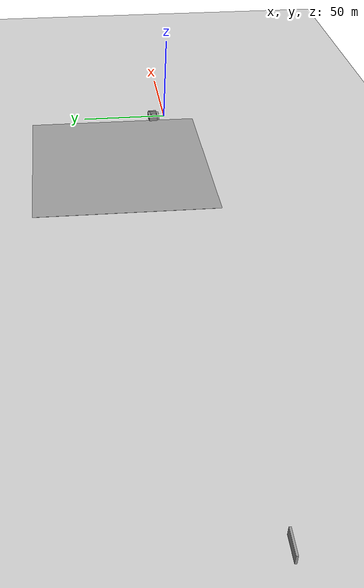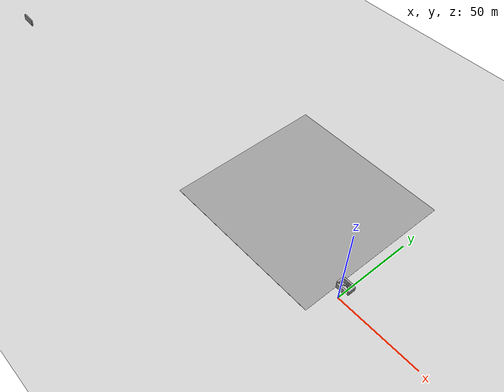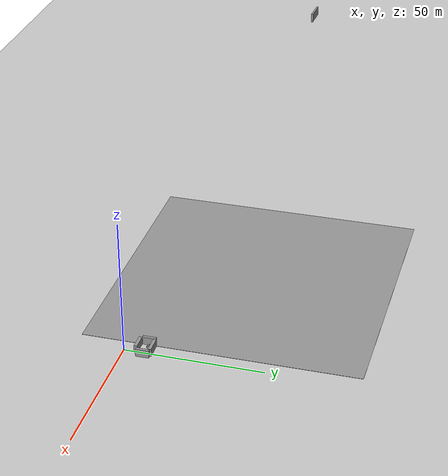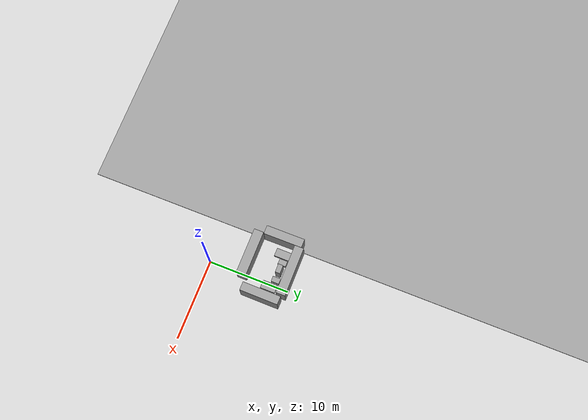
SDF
<sdf version="1.6">
 <world name="default">
  <light name="sun" type="directional">
   <pose>0 0 10 0 -0 0</pose>
   <diffuse>0.8 0.8 0.8 1</diffuse>
   <specular>0.2 0.2 0.2 1</specular>
   <attenuation>
    <range>1000</range>
    <constant>0.9</constant>
    <linear>0.01</linear>
    <quadratic>0.001</quadratic>
   </attenuation>
   <direction>-0.5 0.1 -0.9</direction>
  </light>
  <model name="ground_plane">
   <static>1</static>
   <link name="link">
    <collision name="collision">
     <geometry><plane><normal>0 0 1</normal><size>100 100</size></plane></geometry>
     <surface><friction><ode><mu>100</mu><mu2>50</mu2></ode></friction></surface>
    </collision>
    <visual name="visual">
     <cast_shadows>0</cast_shadows>
     <geometry><plane><normal>0 0 1</normal><size>100 100</size></plane></geometry>
     <material>
      <script><uri>file://media/materials/scripts/gazebo.material</uri><name>Gazebo/Grey</name></script>
     </material>
    </visual>
   </link>
  </model>
  <gravity>0 0 -9.8</gravity>
  <magnetic_field>6e-06 2.3e-05 -4.2e-05</magnetic_field>
  <atmosphere type="adiabatic"/>
  <physics name="default_physics" default="0" type="ode">
   <max_step_size>0.001</max_step_size>
   <real_time_factor>1</real_time_factor>
   <real_time_update_rate>1000</real_time_update_rate>
  </physics>
  <scene><ambient>0.4 0.4 0.4 1</ambient><background>0.7 0.7 0.7 1</background><shadows>1</shadows></scene>
  <spherical_coordinates>
   <surface_model>EARTH_WGS84</surface_model>
   <latitude_deg>0</latitude_deg>
   <longitude_deg>0</longitude_deg>
   <elevation>0</elevation>
   <heading_deg>0</heading_deg>
  </spherical_coordinates>
  <model name="unit_box">
   <pose>0.280069 7.7371 0.206702 0 0 -0.00013</pose>
   <link name="link">
    <inertial>
     <mass>1</mass>
     <inertia>
      <ixx>0.166667</ixx>
      <ixy>0</ixy>
      <ixz>0</ixz>
      <iyy>0.166667</iyy>
      <iyz>0</iyz>
      <izz>0.166667</izz>
     </inertia>
    </inertial>
    <collision name="collision"><geometry><box><size>1 1.85664 0.413405</size></box></geometry></collision>
    <visual name="visual">
     <geometry><box><size>1 1.85664 0.413405</size></box></geometry>
     <material>
      <script><name>Gazebo/Grey</name><uri>file://media/materials/scripts/gazebo.material</uri></script>
     </material>
    </visual>
   </link>
  </model>
  <model name="unit_box_0">
   <pose>-1.80586 8.29965 1.22027 -0 1e-06 0.002108</pose>
   <link name="link">
    <inertial>
     <mass>1</mass>
     <inertia>
      <ixx>0.166667</ixx>
      <ixy>0</ixy>
      <ixz>0</ixz>
      <iyy>0.166667</iyy>
      <iyz>0</iyz>
      <izz>0.166667</izz>
     </inertia>
    </inertial>
    <collision name="collision"><geometry><box><size>1.04614 0.61386 2.44055</size></box></geometry></collision>
    <visual name="visual">
     <geometry><box><size>1.04614 0.61386 2.44055</size></box></geometry>
     <material>
      <script><name>Gazebo/Grey</name><uri>file://media/materials/scripts/gazebo.material</uri></script>
     </material>
    </visual>
   </link>
  </model>
  <model name="unit_box_1_clone">
   <pose>-2.98483 8.21569 0.315592 2e-06 5e-06 0.002174</pose>
   <link name="link">
    <inertial>
     <mass>1</mass>
     <inertia>
      <ixx>0.166667</ixx>
      <ixy>0</ixy>
      <ixz>0</ixz>
      <iyy>0.166667</iyy>
      <iyz>0</iyz>
      <izz>0.166667</izz>
     </inertia>
    </inertial>
    <collision name="collision"><geometry><box><size>0.67948 1 0.631198</size></box></geometry></collision>
    <visual name="visual">
     <geometry><box><size>0.67948 1 0.631198</size></box></geometry>
     <material>
      <script><name>Gazebo/Grey</name><uri>file://media/materials/scripts/gazebo.material</uri></script>
     </material>
    </visual>
   </link>
  </model>
  <model name="unit_box_2">
   <pose>-301.55 -2.63969 2.13236 -0.000172 0.004503 -0.038072</pose>
   <link name="link">
    <inertial>
     <mass>1</mass>
     <inertia>
      <ixx>0.166667</ixx>
      <ixy>0</ixy>
      <ixz>0</ixz>
      <iyy>0.166667</iyy>
      <iyz>0</iyz>
      <izz>0.166667</izz>
     </inertia>
    </inertial>
    <collision name="collision"><geometry><box><size>10.6307 0.864185 4.31218</size></box></geometry></collision>
    <visual name="visual">
     <geometry><box><size>10.6307 0.864185 4.31218</size></box></geometry>
     <material>
      <script><name>Gazebo/Grey</name><uri>file://media/materials/scripts/gazebo.material</uri></script>
     </material>
    </visual>
   </link>
  </model>
  <model name="ground_plane_1">
   <static>1</static>
   <link name="link">
    <collision name="collision">
     <geometry><plane><normal>0 0 1</normal><size>100 100</size></plane></geometry>
     <surface><friction><ode><mu>100</mu><mu2>50</mu2></ode></friction></surface>
    </collision>
    <visual name="visual">
     <cast_shadows>0</cast_shadows>
     <geometry><plane><normal>0 0 1</normal><size>100 100</size></plane></geometry>
     <material>
      <script><uri>file://media/materials/scripts/gazebo.material</uri><name>Gazebo/Grey</name></script>
     </material>
    </visual>
   </link>
   <pose>-55.1214 32.7178 0 0 -0 0</pose>
  </model>
  <model name="unit_box_3">
   <pose>1.82022 7.36454 1.47433 -0.000162 2e-06 -0.006383</pose>
   <link name="link">
    <inertial>
     <mass>1</mass>
     <inertia>
      <ixx>0.166667</ixx>
      <ixy>0</ixy>
      <ixz>0</ixz>
      <iyy>0.166667</iyy>
      <iyz>0</iyz>
      <izz>0.166667</izz>
     </inertia>
    </inertial>
    <collision name="collision"><geometry><box><size>1.05856 4.78123 2.94944</size></box></geometry></collision>
    <visual name="visual">
     <geometry><box><size>1.05856 4.78123 2.94944</size></box></geometry>
     <material>
      <script><name>Gazebo/Grey</name><uri>file://media/materials/scripts/gazebo.material</uri></script>
     </material>
    </visual>
   </link>
  </model>
  <model name="unit_box_3_clone">
   <pose>-5.55604 7.44469 1.47449 -0 -1e-06 0.004477</pose>
   <link name="link">
    <inertial>
     <mass>1</mass>
     <inertia>
      <ixx>0.166667</ixx>
      <ixy>0</ixy>
      <ixz>0</ixz>
      <iyy>0.166667</iyy>
      <iyz>0</iyz>
      <izz>0.166667</izz>
     </inertia>
    </inertial>
    <collision name="collision"><geometry><box><size>1.05856 4.80357 2.94944</size></box></geometry></collision>
    <visual name="visual">
     <geometry><box><size>1.05856 4.80357 2.94944</size></box></geometry>
     <material>
      <script><name>Gazebo/Grey</name><uri>file://media/materials/scripts/gazebo.material</uri></script>
     </material>
    </visual>
   </link>
  </model>
  <model name="unit_box_3_clone_0">
   <pose>-1.97851 9.61482 1.47279 0.000636 -3e-06 1.5757</pose>
   <link name="link">
    <inertial>
     <mass>1</mass>
     <inertia>
      <ixx>0.166667</ixx>
      <ixy>0</ixy>
      <ixz>0</ixz>
      <iyy>0.166667</iyy>
      <iyz>0</iyz>
      <izz>0.166667</izz>
     </inertia>
    </inertial>
    <collision name="collision"><geometry><box><size>1.14142 6.09318 2.94944</size></box></geometry></collision>
    <visual name="visual">
     <geometry><box><size>1.14142 6.09318 2.94944</size></box></geometry>
     <material>
      <script><name>Gazebo/Grey</name><uri>file://media/materials/scripts/gazebo.material</uri></script>
     </material>
    </visual>
   </link>
  </model>
  <model name="unit_box_3_clone_0_clone">
   <pose>-2.33305 4.38025 1.47354 0.000418 2e-06 1.57056</pose>
   <link name="link">
    <inertial>
     <mass>1</mass>
     <inertia>
      <ixx>0.166667</ixx>
      <ixy>0</ixy>
      <ixz>0</ixz>
      <iyy>0.166667</iyy>
      <iyz>0</iyz>
      <izz>0.166667</izz>
     </inertia>
    </inertial>
    <collision name="collision"><geometry><box><size>1.20204 5.61496 2.94943</size></box></geometry></collision>
    <visual name="visual">
     <geometry><box><size>1.20204 5.61496 2.94943</size></box></geometry>
     <material>
      <script><name>Gazebo/Grey</name><uri>file://media/materials/scripts/gazebo.material</uri></script>
     </material>
    </visual>
   </link>
  </model>
  <model name="unit_box_clone_0">
   <pose>-3.96525 7.84331 0.206702 0 0 -0.00013</pose>
   <link name="link">
    <inertial>
     <mass>1</mass>
     <inertia>
      <ixx>0.166667</ixx>
      <ixy>0</ixy>
      <ixz>0</ixz>
      <iyy>0.166667</iyy>
      <iyz>0</iyz>
      <izz>0.166667</izz>
     </inertia>
    </inertial>
    <collision name="collision"><geometry><box><size>1 1.85664 0.413405</size></box></geometry></collision>
    <visual name="visual">
     <geometry><box><size>1 1.85664 0.413405</size></box></geometry>
     <material>
      <script><name>Gazebo/Grey</name><uri>file://media/materials/scripts/gazebo.material</uri></script>
     </material>
    </visual>
   </link>
  </model>
  <model name="unit_box_1_clone_clone">
   <pose>-0.719906 8.25462 0.315594 -4e-06 7e-06 0.002176</pose>
   <link name="link">
    <inertial>
     <mass>1</mass>
     <inertia>
      <ixx>0.166667</ixx>
      <ixy>0</ixy>
      <ixz>0</ixz>
      <iyy>0.166667</iyy>
      <iyz>0</iyz>
      <izz>0.166667</izz>
     </inertia>
    </inertial>
    <collision name="collision"><geometry><box><size>0.67948 1 0.631198</size></box></geometry></collision>
    <visual name="visual">
     <geometry><box><size>0.67948 1 0.631198</size></box></geometry>
     <material>
      <script><name>Gazebo/Grey</name><uri>file://media/materials/scripts/gazebo.material</uri></script>
     </material>
    </visual>
   </link>
  </model>
 </world>
</sdf>
